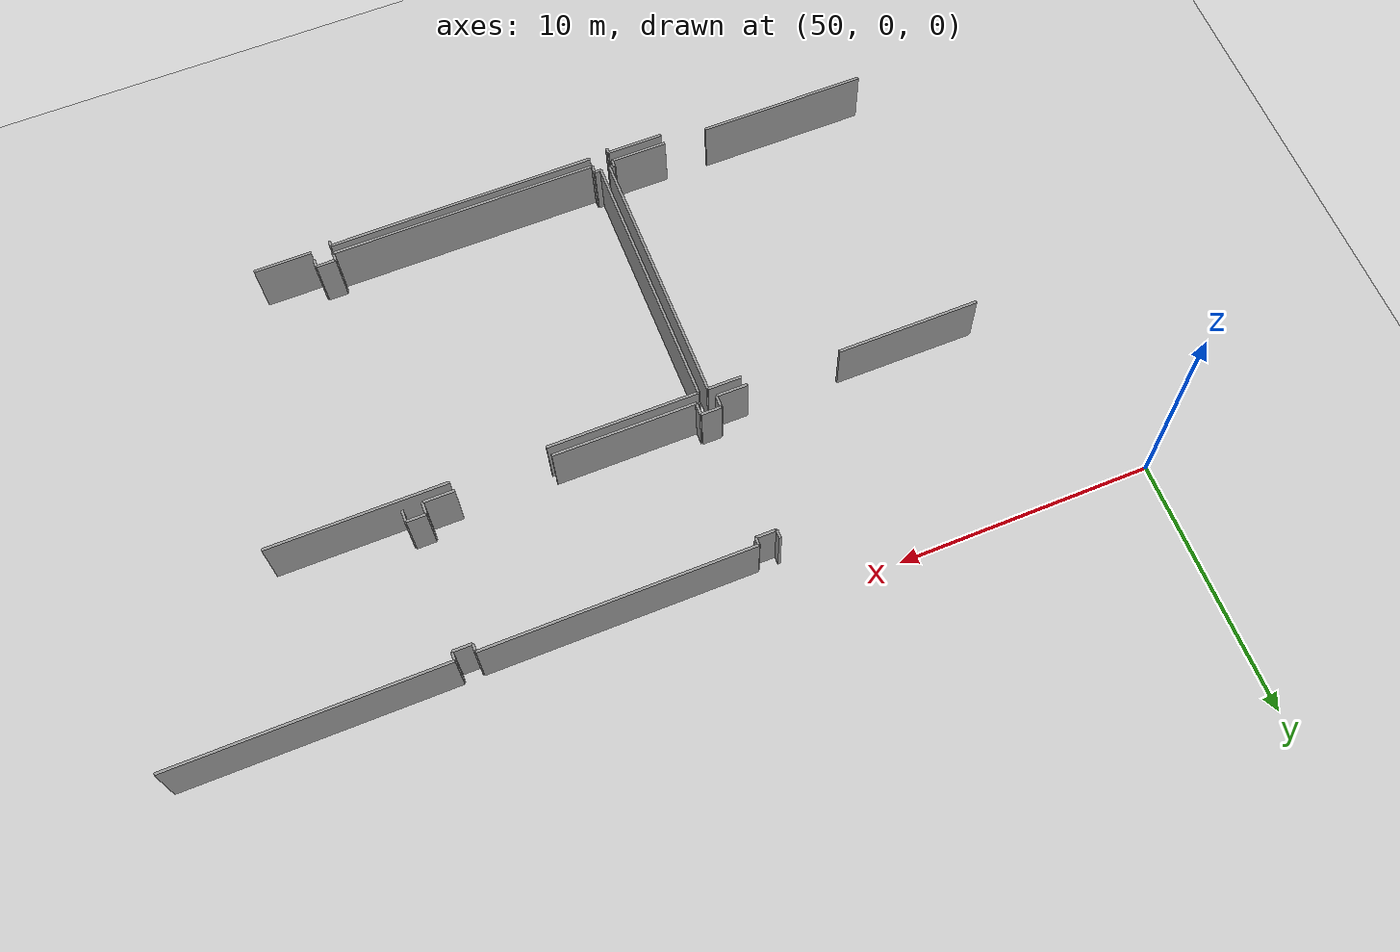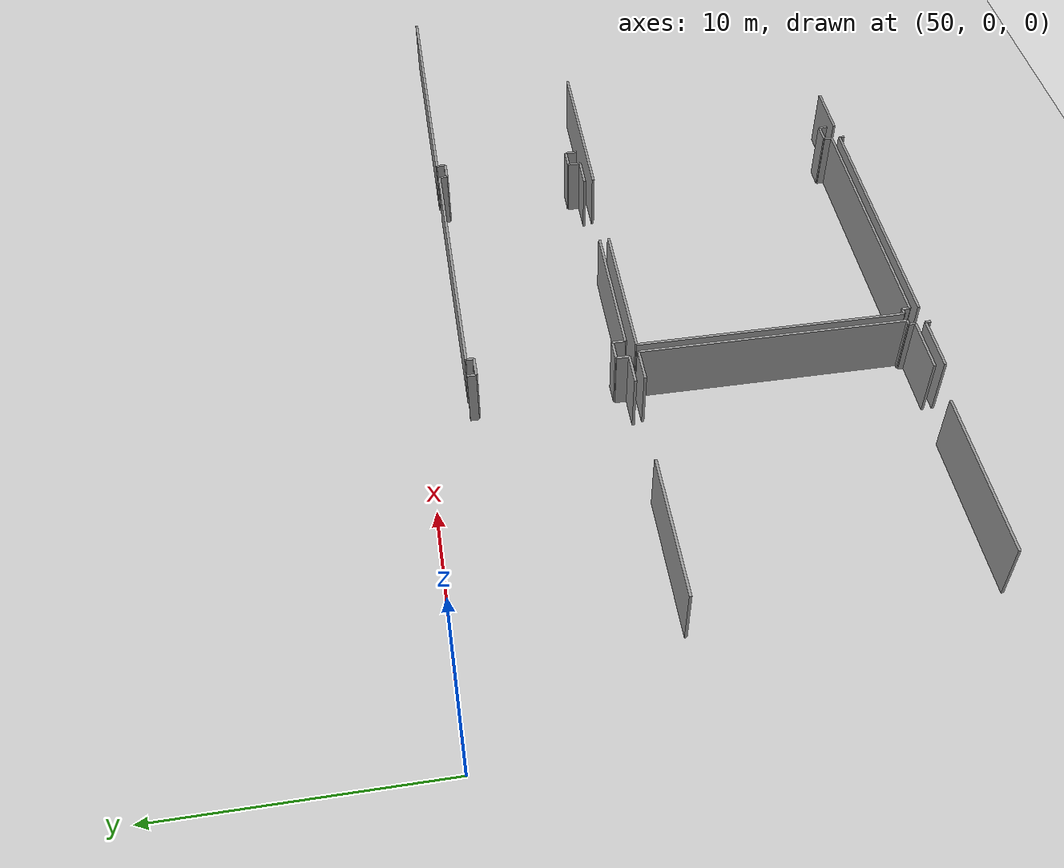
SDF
<sdf version="1.6">
 <world name="default">
  <model name="ground_plane">
   <static>1</static>
   <link name="link">
    <collision name="collision">
     <geometry><plane><normal>0 0 1</normal><size>100 100</size></plane></geometry>
     <surface><friction><ode><mu>100</mu><mu2>50</mu2></ode></friction></surface>
    </collision>
    <visual name="visual">
     <cast_shadows>0</cast_shadows>
     <geometry><plane><normal>0 0 1</normal><size>100 100</size></plane></geometry>
     <material>
      <script><uri>file://media/materials/scripts/gazebo.material</uri><name>Gazebo/Grey</name></script>
     </material>
    </visual>
   </link>
  </model>
  <model name="50015847">
   <static>1</static>
   <link name="Wall_966">
    <collision name="Wall_966_Collision">
     <geometry><box><size>10.3432145218 0.1 2.5</size></box></geometry>
     <pose>5.17160726089 0 1.25 0 0 0</pose>
    </collision>
    <visual name="Wall_966_Visual">
     <pose>5.17160726089 0 1.25 0 0 0</pose>
     <geometry><box><size>10.3432145218 0.1 2.5</size></box></geometry>
     <material>
      <script><uri>file://media/materials/scripts/gazebo.material</uri><name>Gazebo/Grey</name></script>
      <ambient>1 1 1 1</ambient>
     </material>
    </visual>
    <pose>197.030304571 -62.2736055321 0 0 0 1.57079632679</pose>
   </link>
   <link name="Wall_967">
    <collision name="Wall_967_Collision">
     <geometry><box><size>5.87888340876 0.1 2.5</size></box></geometry>
     <pose>2.93944170438 0 1.25 0 0 0</pose>
    </collision>
    <visual name="Wall_967_Visual">
     <pose>2.93944170438 0 1.25 0 0 0</pose>
     <geometry><box><size>5.87888340876 0.1 2.5</size></box></geometry>
     <material>
      <script><uri>file://media/materials/scripts/gazebo.material</uri><name>Gazebo/Grey</name></script>
      <ambient>1 1 1 1</ambient>
     </material>
    </visual>
    <pose>197.030304571 -51.9303910103 0 0 0 0.0</pose>
   </link>
   <link name="Wall_968">
    <collision name="Wall_968_Collision">
     <geometry><box><size>6.9136116337 0.1 2.5</size></box></geometry>
     <pose>3.45680581685 0 1.25 0 0 0</pose>
    </collision>
    <visual name="Wall_968_Visual">
     <pose>3.45680581685 0 1.25 0 0 0</pose>
     <geometry><box><size>6.9136116337 0.1 2.5</size></box></geometry>
     <material>
      <script><uri>file://media/materials/scripts/gazebo.material</uri><name>Gazebo/Grey</name></script>
      <ambient>1 1 1 1</ambient>
     </material>
    </visual>
    <pose>206.547007678 -51.9303910103 0 0 0 0.0</pose>
   </link>
   <link name="Wall_972">
    <collision name="Wall_972_Collision">
     <geometry><box><size>0.324147048355 0.1 2.5</size></box></geometry>
     <pose>0.162073524178 0 1.25 0 0 0</pose>
    </collision>
    <visual name="Wall_972_Visual">
     <pose>0.162073524178 0 1.25 0 0 0</pose>
     <geometry><box><size>0.324147048355 0.1 2.5</size></box></geometry>
     <material>
      <script><uri>file://media/materials/scripts/gazebo.material</uri><name>Gazebo/Grey</name></script>
      <ambient>1 1 1 1</ambient>
     </material>
    </visual>
    <pose>208.453500788 -62.5784308741 0 0 0 1.57079632679</pose>
   </link>
   <link name="Wall_973">
    <collision name="Wall_973_Collision">
     <geometry><box><size>0.755071947933 0.1 2.5</size></box></geometry>
     <pose>0.377535973967 0 1.25 0 0 0</pose>
    </collision>
    <visual name="Wall_973_Visual">
     <pose>0.377535973967 0 1.25 0 0 0</pose>
     <geometry><box><size>0.755071947933 0.1 2.5</size></box></geometry>
     <material>
      <script><uri>file://media/materials/scripts/gazebo.material</uri><name>Gazebo/Grey</name></script>
      <ambient>1 1 1 1</ambient>
     </material>
    </visual>
    <pose>208.453500788 -62.2542838257 0 0 0 3.14159265359</pose>
   </link>
   <link name="Wall_974">
    <collision name="Wall_974_Collision">
     <geometry><box><size>0.324909747292 0.1 2.5</size></box></geometry>
     <pose>0.162454873646 0 1.25 0 0 0</pose>
    </collision>
    <visual name="Wall_974_Visual">
     <pose>0.162454873646 0 1.25 0 0 0</pose>
     <geometry><box><size>0.324909747292 0.1 2.5</size></box></geometry>
     <material>
      <script><uri>file://media/materials/scripts/gazebo.material</uri><name>Gazebo/Grey</name></script>
      <ambient>1 1 1 1</ambient>
     </material>
    </visual>
    <pose>207.69842884 -62.2542838257 0 0 0 -1.57079632679</pose>
   </link>
   <link name="Wall_975">
    <collision name="Wall_975_Collision">
     <geometry><box><size>10.4184674836 0.1 2.5</size></box></geometry>
     <pose>5.2092337418 0 1.25 0 0 0</pose>
    </collision>
    <visual name="Wall_975_Visual">
     <pose>5.2092337418 0 1.25 0 0 0</pose>
     <geometry><box><size>10.4184674836 0.1 2.5</size></box></geometry>
     <material>
      <script><uri>file://media/materials/scripts/gazebo.material</uri><name>Gazebo/Grey</name></script>
      <ambient>1 1 1 1</ambient>
     </material>
    </visual>
    <pose>207.69842884 -62.579193573 0 0 0 3.14159265359</pose>
   </link>
   <link name="Wall_976">
    <collision name="Wall_976_Collision">
     <geometry><box><size>0.289317130218 0.1 2.5</size></box></geometry>
     <pose>0.144658565109 0 1.25 0 0 0</pose>
    </collision>
    <visual name="Wall_976_Visual">
     <pose>0.144658565109 0 1.25 0 0 0</pose>
     <geometry><box><size>0.289317130218 0.1 2.5</size></box></geometry>
     <material>
      <script><uri>file://media/materials/scripts/gazebo.material</uri><name>Gazebo/Grey</name></script>
      <ambient>1 1 1 1</ambient>
     </material>
    </visual>
    <pose>197.279961357 -62.579193573 0 0 0 1.57079632679</pose>
   </link>
   <link name="Wall_977">
    <collision name="Wall_977_Collision">
     <geometry><box><size>0.250186436621 0.1 2.5</size></box></geometry>
     <pose>0.12509321831 0 1.25 0 0 0</pose>
    </collision>
    <visual name="Wall_977_Visual">
     <pose>0.12509321831 0 1.25 0 0 0</pose>
     <geometry><box><size>0.250186436621 0.1 2.5</size></box></geometry>
     <material>
      <script><uri>file://media/materials/scripts/gazebo.material</uri><name>Gazebo/Grey</name></script>
      <ambient>1 1 1 1</ambient>
     </material>
    </visual>
    <pose>197.279961357 -62.2898764428 0 0 0 3.07651157808</pose>
   </link>
   <link name="Wall_980">
    <collision name="Wall_980_Collision">
     <geometry><box><size>1.31336757004 0.1 2.5</size></box></geometry>
     <pose>0.656683785021 0 1.25 0 0 0</pose>
    </collision>
    <visual name="Wall_980_Visual">
     <pose>0.656683785021 0 1.25 0 0 0</pose>
     <geometry><box><size>1.31336757004 0.1 2.5</size></box></geometry>
     <material>
      <script><uri>file://media/materials/scripts/gazebo.material</uri><name>Gazebo/Grey</name></script>
      <ambient>1 1 1 1</ambient>
     </material>
    </visual>
    <pose>195.352112676 -51.9397976305 0 0 0 0.0</pose>
   </link>
   <link name="Wall_981">
    <collision name="Wall_981_Collision">
     <geometry><box><size>10.3335536686 0.1 2.5</size></box></geometry>
     <pose>5.16677683429 0 1.25 0 0 0</pose>
    </collision>
    <visual name="Wall_981_Visual">
     <pose>5.16677683429 0 1.25 0 0 0</pose>
     <geometry><box><size>10.3335536686 0.1 2.5</size></box></geometry>
     <material>
      <script><uri>file://media/materials/scripts/gazebo.material</uri><name>Gazebo/Grey</name></script>
      <ambient>1 1 1 1</ambient>
     </material>
    </visual>
    <pose>196.665480246 -51.9397976305 0 0 0 -1.57079632679</pose>
   </link>
   <link name="Wall_982">
    <collision name="Wall_982_Collision">
     <geometry><box><size>0.188895103473 0.1 2.5</size></box></geometry>
     <pose>0.0944475517364 0 1.25 0 0 0</pose>
    </collision>
    <visual name="Wall_982_Visual">
     <pose>0.0944475517364 0 1.25 0 0 0</pose>
     <geometry><box><size>0.188895103473 0.1 2.5</size></box></geometry>
     <material>
      <script><uri>file://media/materials/scripts/gazebo.material</uri><name>Gazebo/Grey</name></script>
      <ambient>1 1 1 1</ambient>
     </material>
    </visual>
    <pose>196.665480246 -62.2733512991 0 0 0 3.14159265359</pose>
   </link>
   <link name="Wall_983">
    <collision name="Wall_983_Collision">
     <geometry><box><size>0.257029541872 0.1 2.5</size></box></geometry>
     <pose>0.128514770936 0 1.25 0 0 0</pose>
    </collision>
    <visual name="Wall_983_Visual">
     <pose>0.128514770936 0 1.25 0 0 0</pose>
     <geometry><box><size>0.257029541872 0.1 2.5</size></box></geometry>
     <material>
      <script><uri>file://media/materials/scripts/gazebo.material</uri><name>Gazebo/Grey</name></script>
      <ambient>1 1 1 1</ambient>
     </material>
    </visual>
    <pose>196.476585143 -62.2733512991 0 0 0 -1.57079632679</pose>
   </link>
   <link name="Wall_984">
    <collision name="Wall_984_Collision">
     <geometry><box><size>2.18335282453 0.1 2.5</size></box></geometry>
     <pose>1.09167641226 0 1.25 0 0 0</pose>
    </collision>
    <visual name="Wall_984_Visual">
     <pose>1.09167641226 0 1.25 0 0 0</pose>
     <geometry><box><size>2.18335282453 0.1 2.5</size></box></geometry>
     <material>
      <script><uri>file://media/materials/scripts/gazebo.material</uri><name>Gazebo/Grey</name></script>
      <ambient>1 1 1 1</ambient>
     </material>
    </visual>
    <pose>196.476585143 -62.530380841 0 0 0 3.14159265359</pose>
   </link>
   <link name="Wall_985">
    <collision name="Wall_985_Collision">
     <geometry><box><size>6.52463517568 0.1 2.5</size></box></geometry>
     <pose>3.26231758784 0 1.25 0 0 0</pose>
    </collision>
    <visual name="Wall_985_Visual">
     <pose>3.26231758784 0 1.25 0 0 0</pose>
     <geometry><box><size>6.52463517568 0.1 2.5</size></box></geometry>
     <material>
      <script><uri>file://media/materials/scripts/gazebo.material</uri><name>Gazebo/Grey</name></script>
      <ambient>1 1 1 1</ambient>
     </material>
    </visual>
    <pose>192.596735649 -62.530380841 0 0 0 3.14159265359</pose>
   </link>
   <link name="Wall_1153">
    <collision name="Wall_1153_Collision">
     <geometry><box><size>0.339401027101 0.1 2.5</size></box></geometry>
     <pose>0.169700513551 0 1.25 0 0 0</pose>
    </collision>
    <visual name="Wall_1153_Visual">
     <pose>0.169700513551 0 1.25 0 0 0</pose>
     <geometry><box><size>0.339401027101 0.1 2.5</size></box></geometry>
     <material>
      <script><uri>file://media/materials/scripts/gazebo.material</uri><name>Gazebo/Grey</name></script>
      <ambient>1 1 1 1</ambient>
     </material>
    </visual>
    <pose>196.45421264 -45.5417704785 0 0 0 -1.57079632679</pose>
   </link>
   <link name="Wall_1154">
    <collision name="Wall_1154_Collision">
     <geometry><box><size>0.798037321401 0.1 2.5</size></box></geometry>
     <pose>0.399018660701 0 1.25 0 0 0</pose>
    </collision>
    <visual name="Wall_1154_Visual">
     <pose>0.399018660701 0 1.25 0 0 0</pose>
     <geometry><box><size>0.798037321401 0.1 2.5</size></box></geometry>
     <material>
      <script><uri>file://media/materials/scripts/gazebo.material</uri><name>Gazebo/Grey</name></script>
      <ambient>1 1 1 1</ambient>
     </material>
    </visual>
    <pose>196.45421264 -45.8811715056 0 0 0 0.0</pose>
   </link>
   <link name="Wall_1155">
    <collision name="Wall_1155_Collision">
     <geometry><box><size>0.295418721717 0.1 2.5</size></box></geometry>
     <pose>0.147709360858 0 1.25 0 0 0</pose>
    </collision>
    <visual name="Wall_1155_Visual">
     <pose>0.147709360858 0 1.25 0 0 0</pose>
     <geometry><box><size>0.295418721717 0.1 2.5</size></box></geometry>
     <material>
      <script><uri>file://media/materials/scripts/gazebo.material</uri><name>Gazebo/Grey</name></script>
      <ambient>1 1 1 1</ambient>
     </material>
    </visual>
    <pose>197.252249962 -45.8811715056 0 0 0 1.57079632679</pose>
   </link>
   <link name="Wall_1156">
    <collision name="Wall_1156_Collision">
     <geometry><box><size>10.438297656 0.1 2.5</size></box></geometry>
     <pose>5.21914882799 0 1.25 0 0 0</pose>
    </collision>
    <visual name="Wall_1156_Visual">
     <pose>5.21914882799 0 1.25 0 0 0</pose>
     <geometry><box><size>10.438297656 0.1 2.5</size></box></geometry>
     <material>
      <script><uri>file://media/materials/scripts/gazebo.material</uri><name>Gazebo/Grey</name></script>
      <ambient>1 1 1 1</ambient>
     </material>
    </visual>
    <pose>197.252249962 -45.5857527839 0 0 0 0.0</pose>
   </link>
   <link name="Wall_1157">
    <collision name="Wall_1157_Collision">
     <geometry><box><size>0.31423196217 0.1 2.5</size></box></geometry>
     <pose>0.157115981085 0 1.25 0 0 0</pose>
    </collision>
    <visual name="Wall_1157_Visual">
     <pose>0.157115981085 0 1.25 0 0 0</pose>
     <geometry><box><size>0.31423196217 0.1 2.5</size></box></geometry>
     <material>
      <script><uri>file://media/materials/scripts/gazebo.material</uri><name>Gazebo/Grey</name></script>
      <ambient>1 1 1 1</ambient>
     </material>
    </visual>
    <pose>207.690547618 -45.5857527839 0 0 0 -1.57079632679</pose>
   </link>
   <link name="Wall_1158">
    <collision name="Wall_1158_Collision">
     <geometry><box><size>0.754055016017 0.1 2.5</size></box></geometry>
     <pose>0.377027508008 0 1.25 0 0 0</pose>
    </collision>
    <visual name="Wall_1158_Visual">
     <pose>0.377027508008 0 1.25 0 0 0</pose>
     <geometry><box><size>0.754055016017 0.1 2.5</size></box></geometry>
     <material>
      <script><uri>file://media/materials/scripts/gazebo.material</uri><name>Gazebo/Grey</name></script>
      <ambient>1 1 1 1</ambient>
     </material>
    </visual>
    <pose>207.690547618 -45.899984746 0 0 0 0.0</pose>
   </link>
   <link name="Wall_1159">
    <collision name="Wall_1159_Collision">
     <geometry><box><size>0.351858443077 0.1 2.5</size></box></geometry>
     <pose>0.175929221539 0 1.25 0 0 0</pose>
    </collision>
    <visual name="Wall_1159_Visual">
     <pose>0.175929221539 0 1.25 0 0 0</pose>
     <geometry><box><size>0.351858443077 0.1 2.5</size></box></geometry>
     <material>
      <script><uri>file://media/materials/scripts/gazebo.material</uri><name>Gazebo/Grey</name></script>
      <ambient>1 1 1 1</ambient>
     </material>
    </visual>
    <pose>208.444602634 -45.899984746 0 0 0 1.57079632679</pose>
   </link>
   <link name="Wall_1160">
    <collision name="Wall_1160_Collision">
     <geometry><box><size>10.4591447603 0.1 2.5</size></box></geometry>
     <pose>5.22957238013 0 1.25 0 0 0</pose>
    </collision>
    <visual name="Wall_1160_Visual">
     <pose>5.22957238013 0 1.25 0 0 0</pose>
     <geometry><box><size>10.4591447603 0.1 2.5</size></box></geometry>
     <material>
      <script><uri>file://media/materials/scripts/gazebo.material</uri><name>Gazebo/Grey</name></script>
      <ambient>1 1 1 1</ambient>
     </material>
    </visual>
    <pose>208.444602634 -45.5481263029 0 0 0 0.0</pose>
   </link>
   <link name="Wall_1205">
    <collision name="Wall_1205_Collision">
     <geometry><box><size>0.461687090049 0.1 2.5</size></box></geometry>
     <pose>0.230843545025 0 1.25 0 0 0</pose>
    </collision>
    <visual name="Wall_1205_Visual">
     <pose>0.230843545025 0 1.25 0 0 0</pose>
     <geometry><box><size>0.461687090049 0.1 2.5</size></box></geometry>
     <material>
      <script><uri>file://media/materials/scripts/gazebo.material</uri><name>Gazebo/Grey</name></script>
      <ambient>1 1 1 1</ambient>
     </material>
    </visual>
    <pose>208.452483856 -51.5269232725 0 0 0 1.57079632679</pose>
   </link>
   <link name="Wall_1206">
    <collision name="Wall_1206_Collision">
     <geometry><box><size>0.75888544262 0.1 2.5</size></box></geometry>
     <pose>0.37944272131 0 1.25 0 0 0</pose>
    </collision>
    <visual name="Wall_1206_Visual">
     <pose>0.37944272131 0 1.25 0 0 0</pose>
     <geometry><box><size>0.75888544262 0.1 2.5</size></box></geometry>
     <material>
      <script><uri>file://media/materials/scripts/gazebo.material</uri><name>Gazebo/Grey</name></script>
      <ambient>1 1 1 1</ambient>
     </material>
    </visual>
    <pose>208.452483856 -51.0652361824 0 0 0 3.14159265359</pose>
   </link>
   <link name="Wall_1207">
    <collision name="Wall_1207_Collision">
     <geometry><box><size>0.491432348604 0.1 2.5</size></box></geometry>
     <pose>0.245716174302 0 1.25 0 0 0</pose>
    </collision>
    <visual name="Wall_1207_Visual">
     <pose>0.245716174302 0 1.25 0 0 0</pose>
     <geometry><box><size>0.491432348604 0.1 2.5</size></box></geometry>
     <material>
      <script><uri>file://media/materials/scripts/gazebo.material</uri><name>Gazebo/Grey</name></script>
      <ambient>1 1 1 1</ambient>
     </material>
    </visual>
    <pose>207.693598414 -51.0652361824 0 0 0 -1.57079632679</pose>
   </link>
   <link name="Wall_1208">
    <collision name="Wall_1208_Collision">
     <geometry><box><size>1.21675903798 0.1 2.5</size></box></geometry>
     <pose>0.608379518991 0 1.25 0 0 0</pose>
    </collision>
    <visual name="Wall_1208_Visual">
     <pose>0.608379518991 0 1.25 0 0 0</pose>
     <geometry><box><size>1.21675903798 0.1 2.5</size></box></geometry>
     <material>
      <script><uri>file://media/materials/scripts/gazebo.material</uri><name>Gazebo/Grey</name></script>
      <ambient>1 1 1 1</ambient>
     </material>
    </visual>
    <pose>207.693598414 -51.556668531 0 0 0 3.14159265359</pose>
   </link>
   <link name="Wall_1209">
    <collision name="Wall_1209_Collision">
     <geometry><box><size>5.56821070829 0.1 2.5</size></box></geometry>
     <pose>2.78410535415 0 1.25 0 0 0</pose>
    </collision>
    <visual name="Wall_1209_Visual">
     <pose>2.78410535415 0 1.25 0 0 0</pose>
     <geometry><box><size>5.56821070829 0.1 2.5</size></box></geometry>
     <material>
      <script><uri>file://media/materials/scripts/gazebo.material</uri><name>Gazebo/Grey</name></script>
      <ambient>1 1 1 1</ambient>
     </material>
    </visual>
    <pose>202.840290843 -51.556668531 0 0 0 3.14159265359</pose>
   </link>
   <link name="Wall_1210">
    <collision name="Wall_1210_Collision">
     <geometry><box><size>0.488127319876 0.1 2.5</size></box></geometry>
     <pose>0.244063659938 0 1.25 0 0 0</pose>
    </collision>
    <visual name="Wall_1210_Visual">
     <pose>0.244063659938 0 1.25 0 0 0</pose>
     <geometry><box><size>0.488127319876 0.1 2.5</size></box></geometry>
     <material>
      <script><uri>file://media/materials/scripts/gazebo.material</uri><name>Gazebo/Grey</name></script>
      <ambient>1 1 1 1</ambient>
     </material>
    </visual>
    <pose>197.272080134 -51.556668531 0 0 0 1.57079632679</pose>
   </link>
   <link name="Wall_1211">
    <collision name="Wall_1211_Collision">
     <geometry><box><size>0.789647633091 0.1 2.5</size></box></geometry>
     <pose>0.394823816545 0 1.25 0 0 0</pose>
    </collision>
    <visual name="Wall_1211_Visual">
     <pose>0.394823816545 0 1.25 0 0 0</pose>
     <geometry><box><size>0.789647633091 0.1 2.5</size></box></geometry>
     <material>
      <script><uri>file://media/materials/scripts/gazebo.material</uri><name>Gazebo/Grey</name></script>
      <ambient>1 1 1 1</ambient>
     </material>
    </visual>
    <pose>197.272080134 -51.0685412112 0 0 0 3.14159265359</pose>
   </link>
   <link name="Wall_1212">
    <collision name="Wall_1212_Collision">
     <geometry><box><size>0.490415416688 0.1 2.5</size></box></geometry>
     <pose>0.245207708344 0 1.25 0 0 0</pose>
    </collision>
    <visual name="Wall_1212_Visual">
     <pose>0.245207708344 0 1.25 0 0 0</pose>
     <geometry><box><size>0.490415416688 0.1 2.5</size></box></geometry>
     <material>
      <script><uri>file://media/materials/scripts/gazebo.material</uri><name>Gazebo/Grey</name></script>
      <ambient>1 1 1 1</ambient>
     </material>
    </visual>
    <pose>196.482432501 -51.0685412112 0 0 0 -1.57079632679</pose>
   </link>
   <link name="Wall_1213">
    <collision name="Wall_1213_Collision">
     <geometry><box><size>1.22158946459 0.1 2.5</size></box></geometry>
     <pose>0.610794732293 0 1.25 0 0 0</pose>
    </collision>
    <visual name="Wall_1213_Visual">
     <pose>0.610794732293 0 1.25 0 0 0</pose>
     <geometry><box><size>1.22158946459 0.1 2.5</size></box></geometry>
     <material>
      <script><uri>file://media/materials/scripts/gazebo.material</uri><name>Gazebo/Grey</name></script>
      <ambient>1 1 1 1</ambient>
     </material>
    </visual>
    <pose>196.482432501 -51.5589566279 0 0 0 3.14159265359</pose>
   </link>
   <link name="Wall_1214">
    <collision name="Wall_1214_Collision">
     <geometry><box><size>5.56795647531 0.1 2.5</size></box></geometry>
     <pose>2.78397823766 0 1.25 0 0 0</pose>
    </collision>
    <visual name="Wall_1214_Visual">
     <pose>2.78397823766 0 1.25 0 0 0</pose>
     <geometry><box><size>5.56795647531 0.1 2.5</size></box></geometry>
     <material>
      <script><uri>file://media/materials/scripts/gazebo.material</uri><name>Gazebo/Grey</name></script>
      <ambient>1 1 1 1</ambient>
     </material>
    </visual>
    <pose>191.609040525 -51.5589566279 0 0 0 3.14159265359</pose>
   </link>
   <link name="Wall_1544">
    <collision name="Wall_1544_Collision">
     <geometry><box><size>2.22352163523 0.1 2.5</size></box></geometry>
     <pose>1.11176081761 0 1.25 0 0 0</pose>
    </collision>
    <visual name="Wall_1544_Visual">
     <pose>1.11176081761 0 1.25 0 0 0</pose>
     <geometry><box><size>2.22352163523 0.1 2.5</size></box></geometry>
     <material>
      <script><uri>file://media/materials/scripts/gazebo.material</uri><name>Gazebo/Grey</name></script>
      <ambient>1 1 1 1</ambient>
     </material>
    </visual>
    <pose>208.463415874 -62.9178319012 0 0 0 0.0</pose>
   </link>
   <link name="Wall_1557">
    <collision name="Wall_1557_Collision">
     <geometry><box><size>2.18869171709 0.1 2.5</size></box></geometry>
     <pose>1.09434585854 0 1.25 0 0 0</pose>
    </collision>
    <visual name="Wall_1557_Visual">
     <pose>1.09434585854 0 1.25 0 0 0</pose>
     <geometry><box><size>2.18869171709 0.1 2.5</size></box></geometry>
     <material>
      <script><uri>file://media/materials/scripts/gazebo.material</uri><name>Gazebo/Grey</name></script>
      <ambient>1 1 1 1</ambient>
     </material>
    </visual>
    <pose>194.28916459 -62.9366451416 0 0 0 0.0</pose>
   </link>
   <link name="Wall_1558">
    <collision name="Wall_1558_Collision">
     <geometry><box><size>0.196776325825 0.1 2.5</size></box></geometry>
     <pose>0.0983881629125 0 1.25 0 0 0</pose>
    </collision>
    <visual name="Wall_1558_Visual">
     <pose>0.0983881629125 0 1.25 0 0 0</pose>
     <geometry><box><size>0.196776325825 0.1 2.5</size></box></geometry>
     <material>
      <script><uri>file://media/materials/scripts/gazebo.material</uri><name>Gazebo/Grey</name></script>
      <ambient>1 1 1 1</ambient>
     </material>
    </visual>
    <pose>196.477856308 -62.9366451416 0 0 0 -1.57079632679</pose>
   </link>
   <link name="Wall_1729">
    <collision name="Wall_1729_Collision">
     <geometry><box><size>10.438297656 0.1 2.5</size></box></geometry>
     <pose>5.21914882799 0 1.25 0 0 0</pose>
    </collision>
    <visual name="Wall_1729_Visual">
     <pose>5.21914882799 0 1.25 0 0 0</pose>
     <geometry><box><size>10.438297656 0.1 2.5</size></box></geometry>
     <material>
      <script><uri>file://media/materials/scripts/gazebo.material</uri><name>Gazebo/Grey</name></script>
      <ambient>1 1 1 1</ambient>
     </material>
    </visual>
    <pose>197.24614837 -62.9302893171 0 0 0 0.0</pose>
   </link>
   <link name="Wall_1730">
    <collision name="Wall_1730_Collision">
     <geometry><box><size>0.206437179031 0.1 2.5</size></box></geometry>
     <pose>0.103218589515 0 1.25 0 0 0</pose>
    </collision>
    <visual name="Wall_1730_Visual">
     <pose>0.103218589515 0 1.25 0 0 0</pose>
     <geometry><box><size>0.206437179031 0.1 2.5</size></box></geometry>
     <material>
      <script><uri>file://media/materials/scripts/gazebo.material</uri><name>Gazebo/Grey</name></script>
      <ambient>1 1 1 1</ambient>
     </material>
    </visual>
    <pose>207.684446026 -62.9302893171 0 0 0 -1.57079632679</pose>
   </link>
   <pose>-132.35 43.9162226064 0 0 0 0</pose>
  </model>
 </world>
</sdf>
